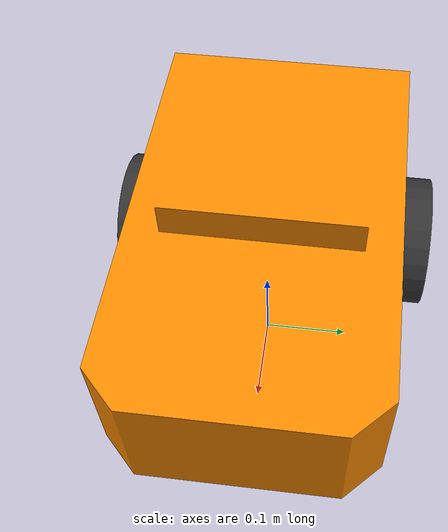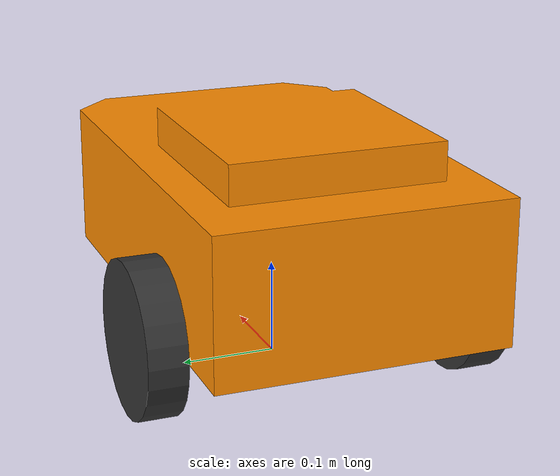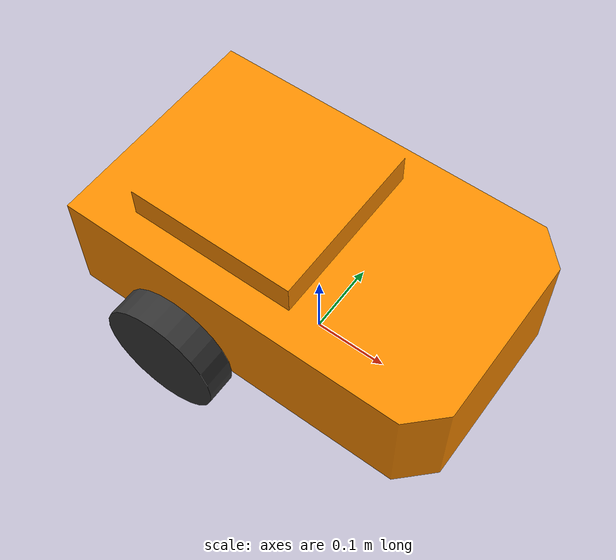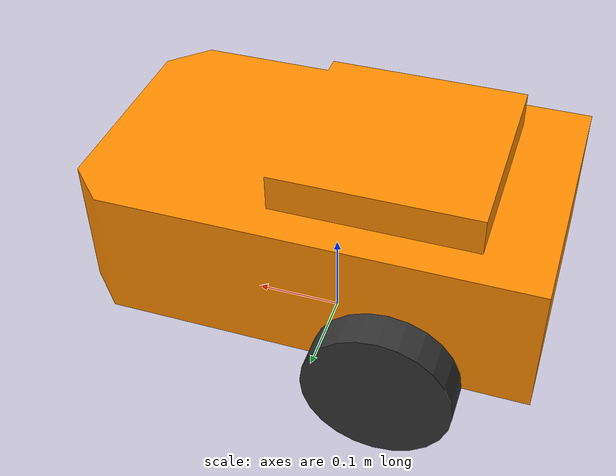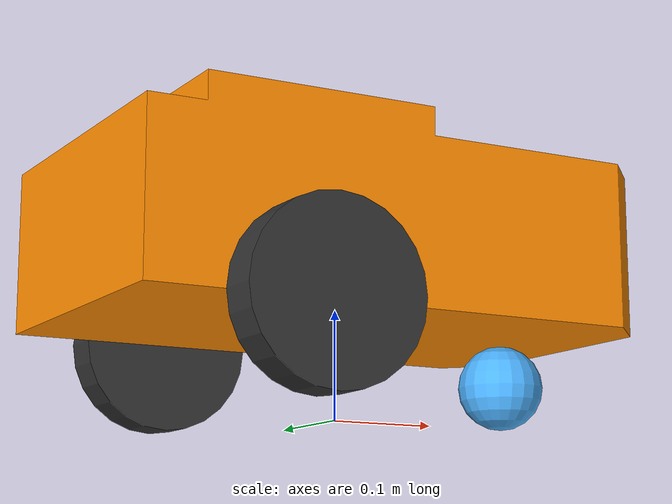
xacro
<?xml version="1.0"?>
<!-- Chiku with MESH visuals (STL files drawn in millimetres) and simple collision shapes -->
<robot name="chiku_mesh" xmlns:xacro="http://www.ros.org/wiki/xacro">
  <xacro:include filename="../../common/urdf/macros.xacro"/>
  <xacro:property name="mm" value="0.001"/>
  <link name="base_footprint"/>
  <joint name="base_joint" type="fixed"><parent link="base_footprint"/><child link="base_link"/><origin xyz="0 0 0.08"/></joint>
  <link name="base_link">
    <visual>
      <geometry><mesh filename="package://chiku_description/meshes/chiku_body.stl" scale="${mm} ${mm} ${mm}"/></geometry>
      <material name="orange"/>
    </visual>
    <collision><origin xyz="0 0 0.075"/><geometry><box size="0.5 0.3 0.15"/></geometry></collision>
    <xacro:box_inertia m="4.0" x="0.5" y="0.3" z="0.15" xyz="0 0 0.075"/>
  </link>
  <xacro:macro name="wheel" params="side y_sign">
    <joint name="${side}_wheel_joint" type="continuous">
      <parent link="base_link"/><child link="${side}_wheel_link"/><origin xyz="-0.1 ${y_sign*0.17} 0"/><axis xyz="0 1 0"/>
    </joint>
    <link name="${side}_wheel_link">
      <visual>
        <geometry><mesh filename="package://chiku_description/meshes/chiku_wheel.stl" scale="${mm} ${mm} ${mm}"/></geometry>
        <material name="dark_grey"/>
      </visual>
      <collision><origin rpy="${pi/2} 0 0"/><geometry><cylinder radius="0.08" length="0.04"/></geometry></collision>
      <xacro:cylinder_inertia m="0.4" r="0.08" h="0.04" rpy="${pi/2} 0 0"/>
    </link>
  </xacro:macro>
  <xacro:wheel side="left" y_sign="1"/>
  <xacro:wheel side="right" y_sign="-1"/>
  <joint name="caster_joint" type="fixed"><parent link="base_link"/><child link="caster_link"/><origin xyz="0.18 0 -0.04"/></joint>
  <link name="caster_link">
    <visual><geometry><sphere radius="0.04"/></geometry><material name="sky_blue"/></visual>
    <collision><geometry><sphere radius="0.04"/></geometry></collision>
    <xacro:sphere_inertia m="0.1" r="0.04"/>
  </link>
</robot>

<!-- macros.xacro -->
<!-- Shared materials and inertia macros (solid box, cylinder along Z, sphere) -->
<robot xmlns:xacro="http://www.ros.org/wiki/xacro">
  <material name="orange"><color rgba="1.0 0.55 0.0 1.0"/></material>
  <material name="dark_grey"><color rgba="0.2 0.2 0.2 1.0"/></material>
  <material name="light_grey"><color rgba="0.75 0.75 0.78 1.0"/></material>
  <material name="sky_blue"><color rgba="0.3 0.7 1.0 1.0"/></material>
  <material name="green"><color rgba="0.2 0.75 0.35 1.0"/></material>
  <material name="red"><color rgba="0.9 0.2 0.2 1.0"/></material>
  <material name="white"><color rgba="0.95 0.95 0.95 1.0"/></material>
  <material name="prop_blue"><color rgba="0.3 0.6 1.0 0.6"/></material>

  <xacro:macro name="box_inertia" params="m x y z xyz:='0 0 0' rpy:='0 0 0'">
    <inertial>
      <origin xyz="${xyz}" rpy="${rpy}"/>
      <mass value="${m}"/>
      <inertia ixx="${m*(y*y+z*z)/12}" ixy="0" ixz="0" iyy="${m*(x*x+z*z)/12}" iyz="0" izz="${m*(x*x+y*y)/12}"/>
    </inertial>
  </xacro:macro>
  <xacro:macro name="cylinder_inertia" params="m r h xyz:='0 0 0' rpy:='0 0 0'">
    <inertial>
      <origin xyz="${xyz}" rpy="${rpy}"/>
      <mass value="${m}"/>
      <inertia ixx="${m*(3*r*r+h*h)/12}" ixy="0" ixz="0" iyy="${m*(3*r*r+h*h)/12}" iyz="0" izz="${m*r*r/2}"/>
    </inertial>
  </xacro:macro>
  <xacro:macro name="sphere_inertia" params="m r xyz:='0 0 0'">
    <inertial>
      <origin xyz="${xyz}"/>
      <mass value="${m}"/>
      <inertia ixx="${2*m*r*r/5}" ixy="0" ixz="0" iyy="${2*m*r*r/5}" iyz="0" izz="${2*m*r*r/5}"/>
    </inertial>
  </xacro:macro>
</robot>
